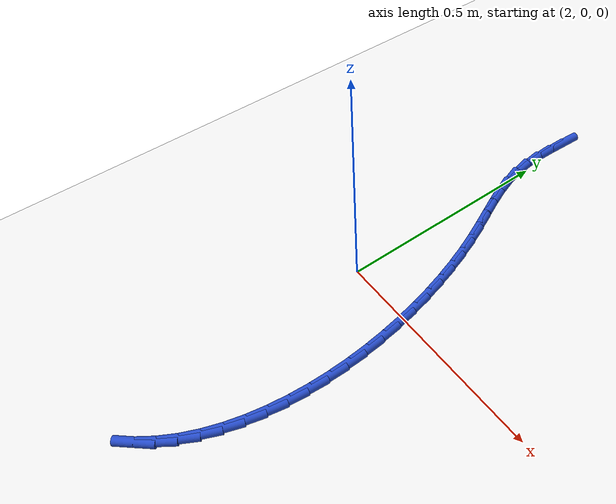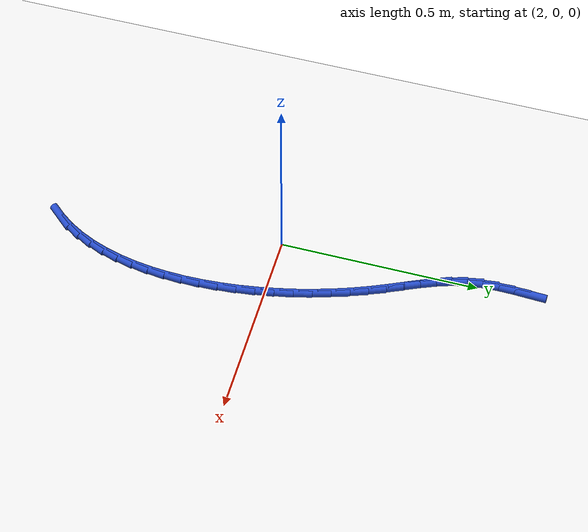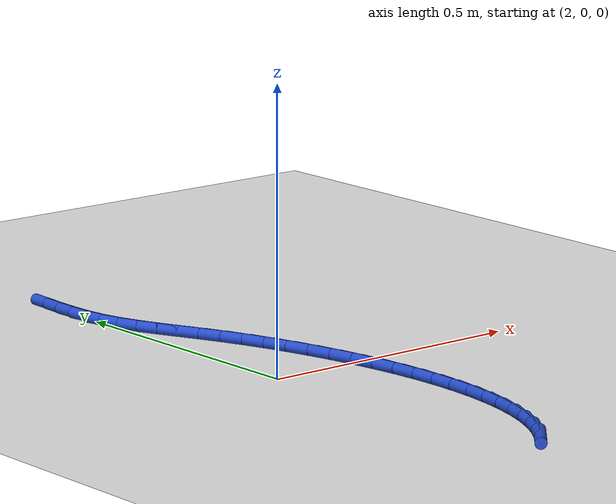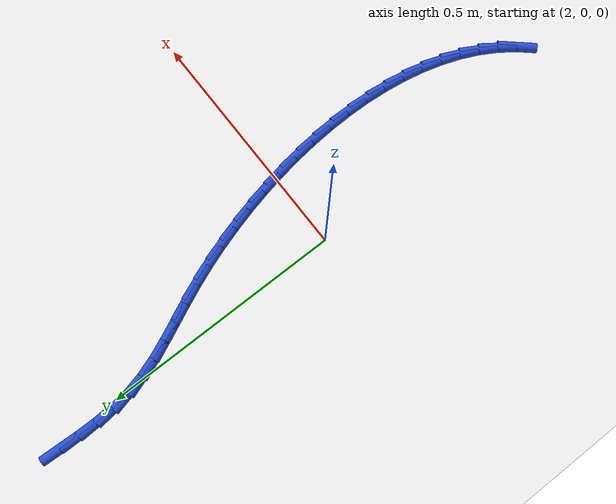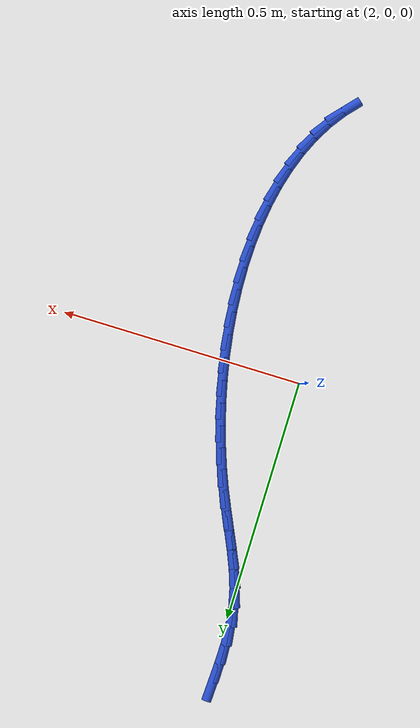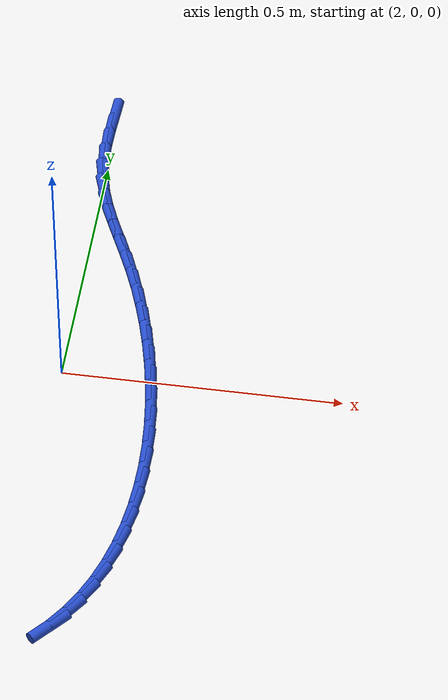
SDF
<sdf version="1.6">
 <world name="default">
  <model name="ground_plane">
   <static>1</static>
   <link name="link">
    <collision name="collision">
     <geometry><plane><normal>0 0 1</normal><size>100 100</size></plane></geometry>
     <surface><friction><ode><mu>100</mu><mu2>50</mu2></ode></friction></surface>
    </collision>
    <visual name="visual">
     <cast_shadows>0</cast_shadows>
     <geometry><plane><normal>0 0 1</normal><size>100 100</size></plane></geometry>
     <material>
      <script><uri>file://media/materials/scripts/gazebo.material</uri><name>Gazebo/WhiteGlow</name></script>
     </material>
    </visual>
   </link>
  </model>
  <model name="line">
   <link name="link_74">
    <pose>1.9905683436335748 0.6313620732711018 0.01 0 1.57 1.5264485321852774</pose>
    <collision name="collision">
     <geometry><cylinder><radius>0.01</radius><length>0.08</length></cylinder></geometry>
    </collision>
    <visual name="visual">
     <material>
      <script><name>Gazebo/Blue</name><uri>file://media/materials/scripts/gazebo.material</uri></script>
     </material>
     <geometry><cylinder><radius>0.01</radius><length>0.08</length></cylinder></geometry>
    </visual>
   </link>
   <link name="link_75">
    <pose>1.9887768717157797 0.5909925952799402 0.01 0 1.57 1.5576720280605996</pose>
    <collision name="collision">
     <geometry><cylinder><radius>0.01</radius><length>0.08</length></cylinder></geometry>
    </collision>
    <visual name="visual">
     <material>
      <script><name>Gazebo/Blue</name><uri>file://media/materials/scripts/gazebo.material</uri></script>
     </material>
     <geometry><cylinder><radius>0.01</radius><length>0.08</length></cylinder></geometry>
    </visual>
   </link>
   <link name="link_76">
    <pose>1.988254181827836 0.5511687625895975 0.01 0 1.57 -1.5263678125301645</pose>
    <collision name="collision">
     <geometry><cylinder><radius>0.01</radius><length>0.08</length></cylinder></geometry>
    </collision>
    <visual name="visual">
     <material>
      <script><name>Gazebo/Blue</name><uri>file://media/materials/scripts/gazebo.material</uri></script>
     </material>
     <geometry><cylinder><radius>0.01</radius><length>0.08</length></cylinder></geometry>
    </visual>
   </link>
   <link name="link_77">
    <pose>1.9899943330664616 0.5120270951418184 0.01 0 1.57 -1.4411348007462543</pose>
    <collision name="collision">
     <geometry><cylinder><radius>0.01</radius><length>0.08</length></cylinder></geometry>
    </collision>
    <visual name="visual">
     <material>
      <script><name>Gazebo/Blue</name><uri>file://media/materials/scripts/gazebo.material</uri></script>
     </material>
     <geometry><cylinder><radius>0.01</radius><length>0.08</length></cylinder></geometry>
    </visual>
   </link>
   <link name="link_78">
    <pose>1.9949913845283749 0.4737041128783494 0.01 0 1.57 -1.3329812186143462</pose>
    <collision name="collision">
     <geometry><cylinder><radius>0.01</radius><length>0.08</length></cylinder></geometry>
    </collision>
    <visual name="visual">
     <material>
      <script><name>Gazebo/Blue</name><uri>file://media/materials/scripts/gazebo.material</uri></script>
     </material>
     <geometry><cylinder><radius>0.01</radius><length>0.08</length></cylinder></geometry>
    </visual>
   </link>
   <link name="link_79">
    <pose>2.0040627913561546 0.4362811569882423 0.01 0 1.57 -1.2385730867904028</pose>
    <collision name="collision">
     <geometry><cylinder><radius>0.01</radius><length>0.08</length></cylinder></geometry>
    </collision>
    <visual name="visual">
     <material>
      <script><name>Gazebo/Blue</name><uri>file://media/materials/scripts/gazebo.material</uri></script>
     </material>
     <geometry><cylinder><radius>0.01</radius><length>0.08</length></cylinder></geometry>
    </visual>
   </link>
   <link name="link_80">
    <pose>2.0167708373801494 0.39944739857713935 0.01 0 1.57 -1.1745856073461858</pose>
    <collision name="collision">
     <geometry><cylinder><radius>0.01</radius><length>0.08</length></cylinder></geometry>
    </collision>
    <visual name="visual">
     <material>
      <script><name>Gazebo/Blue</name><uri>file://media/materials/scripts/gazebo.material</uri></script>
     </material>
     <geometry><cylinder><radius>0.01</radius><length>0.08</length></cylinder></geometry>
    </visual>
   </link>
   <link name="link_81">
    <pose>2.0321342368979254 0.36272217399830053 0.01 0 1.57 -1.1403210324978386</pose>
    <collision name="collision">
     <geometry><cylinder><radius>0.01</radius><length>0.08</length></cylinder></geometry>
    </collision>
    <visual name="visual">
     <material>
      <script><name>Gazebo/Blue</name><uri>file://media/materials/scripts/gazebo.material</uri></script>
     </material>
     <geometry><cylinder><radius>0.01</radius><length>0.08</length></cylinder></geometry>
    </visual>
   </link>
   <link name="link_82">
    <pose>2.049169522062165 0.3256241378080608 0.01 0 1.57 -1.1338948581145991</pose>
    <collision name="collision">
     <geometry><cylinder><radius>0.01</radius><length>0.08</length></cylinder></geometry>
    </collision>
    <visual name="visual">
     <material>
      <script><name>Gazebo/Blue</name><uri>file://media/materials/scripts/gazebo.material</uri></script>
     </material>
     <geometry><cylinder><radius>0.01</radius><length>0.08</length></cylinder></geometry>
    </visual>
   </link>
   <link name="link_83">
    <pose>2.066893225025554 0.28767194456275486 0.01 0 1.57 -1.1532536271270757</pose>
    <collision name="collision">
     <geometry><cylinder><radius>0.01</radius><length>0.08</length></cylinder></geometry>
    </collision>
    <visual name="visual">
     <material>
      <script><name>Gazebo/Blue</name><uri>file://media/materials/scripts/gazebo.material</uri></script>
     </material>
     <geometry><cylinder><radius>0.01</radius><length>0.08</length></cylinder></geometry>
    </visual>
   </link>
   <link name="link_84">
    <pose>2.0843222343114602 0.24838453971609742 0.01 0 1.57 -1.1904791453845849</pose>
    <collision name="collision">
     <geometry><cylinder><radius>0.01</radius><length>0.08</length></cylinder></geometry>
    </collision>
    <visual name="visual">
     <material>
      <script><name>Gazebo/Blue</name><uri>file://media/materials/scripts/gazebo.material</uri></script>
     </material>
     <geometry><cylinder><radius>0.01</radius><length>0.08</length></cylinder></geometry>
    </visual>
   </link>
   <link name="link_85">
    <pose>2.100685484955726 0.20745395752288748 0.01 0 1.57 -1.228871573368687</pose>
    <collision name="collision">
     <geometry><cylinder><radius>0.01</radius><length>0.08</length></cylinder></geometry>
    </collision>
    <visual name="visual">
     <material>
      <script><name>Gazebo/Blue</name><uri>file://media/materials/scripts/gazebo.material</uri></script>
     </material>
     <geometry><cylinder><radius>0.01</radius><length>0.08</length></cylinder></geometry>
    </visual>
   </link>
   <link name="link_86">
    <pose>2.1157817215130152 0.16503735493817676 0.01 0 1.57 -1.266318338247216</pose>
    <collision name="collision">
     <geometry><cylinder><radius>0.01</radius><length>0.08</length></cylinder></geometry>
    </collision>
    <visual name="visual">
     <material>
      <script><name>Gazebo/Blue</name><uri>file://media/materials/scripts/gazebo.material</uri></script>
     </material>
     <geometry><cylinder><radius>0.01</radius><length>0.08</length></cylinder></geometry>
    </visual>
   </link>
   <link name="link_87">
    <pose>2.1295044163452204 0.12136921309646838 0.01 0 1.57 -1.3033833453414247</pose>
    <collision name="collision">
     <geometry><cylinder><radius>0.01</radius><length>0.08</length></cylinder></geometry>
    </collision>
    <visual name="visual">
     <material>
      <script><name>Gazebo/Blue</name><uri>file://media/materials/scripts/gazebo.material</uri></script>
     </material>
     <geometry><cylinder><radius>0.01</radius><length>0.08</length></cylinder></geometry>
    </visual>
   </link>
   <link name="link_88">
    <pose>2.1417470418142366 0.07668401313226557 0.01 0 1.57 -1.3405867833542386</pose>
    <collision name="collision">
     <geometry><cylinder><radius>0.01</radius><length>0.08</length></cylinder></geometry>
    </collision>
    <visual name="visual">
     <material>
      <script><name>Gazebo/Blue</name><uri>file://media/materials/scripts/gazebo.material</uri></script>
     </material>
     <geometry><cylinder><radius>0.01</radius><length>0.08</length></cylinder></geometry>
    </visual>
   </link>
   <link name="link_89">
    <pose>2.1524030702819554 0.031216236180072774 0.01 0 1.57 -1.378426420192836</pose>
    <collision name="collision">
     <geometry><cylinder><radius>0.01</radius><length>0.08</length></cylinder></geometry>
    </collision>
    <visual name="visual">
     <material>
      <script><name>Gazebo/Blue</name><uri>file://media/materials/scripts/gazebo.material</uri></script>
     </material>
     <geometry><cylinder><radius>0.01</radius><length>0.08</length></cylinder></geometry>
    </visual>
   </link>
   <link name="link_90">
    <pose>2.1613659741102693 -0.014799636625606842 0.01 0 1.57 -1.4173956399340315</pose>
    <collision name="collision">
     <geometry><cylinder><radius>0.01</radius><length>0.08</length></cylinder></geometry>
    </collision>
    <visual name="visual">
     <material>
      <script><name>Gazebo/Blue</name><uri>file://media/materials/scripts/gazebo.material</uri></script>
     </material>
     <geometry><cylinder><radius>0.01</radius><length>0.08</length></cylinder></geometry>
    </visual>
   </link>
   <link name="link_91">
    <pose>2.1685292256610738 -0.06112912415026972 0.01 0 1.57 -1.4579992426390789</pose>
    <collision name="collision">
     <geometry><cylinder><radius>0.01</radius><length>0.08</length></cylinder></geometry>
    </collision>
    <visual name="visual">
     <material>
      <script><name>Gazebo/Blue</name><uri>file://media/materials/scripts/gazebo.material</uri></script>
     </material>
     <geometry><cylinder><radius>0.01</radius><length>0.08</length></cylinder></geometry>
    </visual>
   </link>
   <link name="link_92">
    <pose>2.1737862972962607 -0.10753774525941318 0.01 0 1.57 -1.5007675782116328</pose>
    <collision name="collision">
     <geometry><cylinder><radius>0.01</radius><length>0.08</length></cylinder></geometry>
    </collision>
    <visual name="visual">
     <material>
      <script><name>Gazebo/Blue</name><uri>file://media/materials/scripts/gazebo.material</uri></script>
     </material>
     <geometry><cylinder><radius>0.01</radius><length>0.08</length></cylinder></geometry>
    </visual>
   </link>
   <link name="link_93">
    <pose>2.1770306613777235 -0.1537910188185318 0.01 0 1.57 -1.546269096809606</pose>
    <collision name="collision">
     <geometry><cylinder><radius>0.01</radius><length>0.08</length></cylinder></geometry>
    </collision>
    <visual name="visual">
     <material>
      <script><name>Gazebo/Blue</name><uri>file://media/materials/scripts/gazebo.material</uri></script>
     </material>
     <geometry><cylinder><radius>0.01</radius><length>0.08</length></cylinder></geometry>
    </visual>
   </link>
   <link name="link_94">
    <pose>2.1781557902673545 -0.19965446369312276 0.01 0 1.57 1.5464718816760659</pose>
    <collision name="collision">
     <geometry><cylinder><radius>0.01</radius><length>0.08</length></cylinder></geometry>
    </collision>
    <visual name="visual">
     <material>
      <script><name>Gazebo/Blue</name><uri>file://media/materials/scripts/gazebo.material</uri></script>
     </material>
     <geometry><cylinder><radius>0.01</radius><length>0.08</length></cylinder></geometry>
    </visual>
   </link>
   <link name="link_95">
    <pose>2.1770551563270484 -0.24489359874868274 0.01 0 1.57 1.4935976904580648</pose>
    <collision name="collision">
     <geometry><cylinder><radius>0.01</radius><length>0.08</length></cylinder></geometry>
    </collision>
    <visual name="visual">
     <material>
      <script><name>Gazebo/Blue</name><uri>file://media/materials/scripts/gazebo.material</uri></script>
     </material>
     <geometry><cylinder><radius>0.01</radius><length>0.08</length></cylinder></geometry>
    </visual>
   </link>
   <link name="link_96">
    <pose>2.1736222319186966 -0.28927394285070795 0.01 0 1.57 1.4359726636568533</pose>
    <collision name="collision">
     <geometry><cylinder><radius>0.01</radius><length>0.08</length></cylinder></geometry>
    </collision>
    <visual name="visual">
     <material>
      <script><name>Gazebo/Blue</name><uri>file://media/materials/scripts/gazebo.material</uri></script>
     </material>
     <geometry><cylinder><radius>0.01</radius><length>0.08</length></cylinder></geometry>
    </visual>
   </link>
   <link name="link_97">
    <pose>2.1677504894041935 -0.3325610148646948 0.01 0 1.57 1.372822789950009</pose>
    <collision name="collision">
     <geometry><cylinder><radius>0.01</radius><length>0.08</length></cylinder></geometry>
    </collision>
    <visual name="visual">
     <material>
      <script><name>Gazebo/Blue</name><uri>file://media/materials/scripts/gazebo.material</uri></script>
     </material>
     <geometry><cylinder><radius>0.01</radius><length>0.08</length></cylinder></geometry>
    </visual>
   </link>
   <link name="link_98">
    <pose>2.159333401145432 -0.3745203336561407 0.01 0 1.57 1.3033563496669238</pose>
    <collision name="collision">
     <geometry><cylinder><radius>0.01</radius><length>0.08</length></cylinder></geometry>
    </collision>
    <visual name="visual">
     <material>
      <script><name>Gazebo/Blue</name><uri>file://media/materials/scripts/gazebo.material</uri></script>
     </material>
     <geometry><cylinder><radius>0.01</radius><length>0.08</length></cylinder></geometry>
    </visual>
   </link>
   <link name="link_99">
    <pose>2.1482644395043056 -0.41491741809054017 0.01 0 1.57 1.226818830437995</pose>
    <collision name="collision">
     <geometry><cylinder><radius>0.01</radius><length>0.08</length></cylinder></geometry>
    </collision>
    <visual name="visual">
     <material>
      <script><name>Gazebo/Blue</name><uri>file://media/materials/scripts/gazebo.material</uri></script>
     </material>
     <geometry><cylinder><radius>0.01</radius><length>0.08</length></cylinder></geometry>
    </visual>
   </link>
   <link name="link_100">
    <pose>2.1344370768427066 -0.45351778703339063 0.01 0 1.57 1.1425849199541773</pose>
    <collision name="collision">
     <geometry><cylinder><radius>0.01</radius><length>0.08</length></cylinder></geometry>
    </collision>
    <visual name="visual">
     <material>
      <script><name>Gazebo/Blue</name><uri>file://media/materials/scripts/gazebo.material</uri></script>
     </material>
     <geometry><cylinder><radius>0.01</radius><length>0.08</length></cylinder></geometry>
    </visual>
   </link>
   <link name="link_101">
    <pose>2.1177447855225293 -0.49008695935018853 0.01 0 1.57 1.050294244260722</pose>
    <collision name="collision">
     <geometry><cylinder><radius>0.01</radius><length>0.08</length></cylinder></geometry>
    </collision>
    <visual name="visual">
     <material>
      <script><name>Gazebo/Blue</name><uri>file://media/materials/scripts/gazebo.material</uri></script>
     </material>
     <geometry><cylinder><radius>0.01</radius><length>0.08</length></cylinder></geometry>
    </visual>
   </link>
   <link name="link_102">
    <pose>2.098081037905666 -0.52439045390643 0.01 0 1.57 0.9500252058325969</pose>
    <collision name="collision">
     <geometry><cylinder><radius>0.01</radius><length>0.08</length></cylinder></geometry>
    </collision>
    <visual name="visual">
     <material>
      <script><name>Gazebo/Blue</name><uri>file://media/materials/scripts/gazebo.material</uri></script>
     </material>
     <geometry><cylinder><radius>0.01</radius><length>0.08</length></cylinder></geometry>
    </visual>
   </link>
   <link name="link_103">
    <pose>2.0753393063540093 -0.5561937895676123 0.01 0 1.57 0.8424768538618533</pose>
    <collision name="collision">
     <geometry><cylinder><radius>0.01</radius><length>0.08</length></cylinder></geometry>
    </collision>
    <visual name="visual">
     <material>
      <script><name>Gazebo/Blue</name><uri>file://media/materials/scripts/gazebo.material</uri></script>
     </material>
     <geometry><cylinder><radius>0.01</radius><length>0.08</length></cylinder></geometry>
    </visual>
   </link>
  </model>
 </world>
</sdf>
